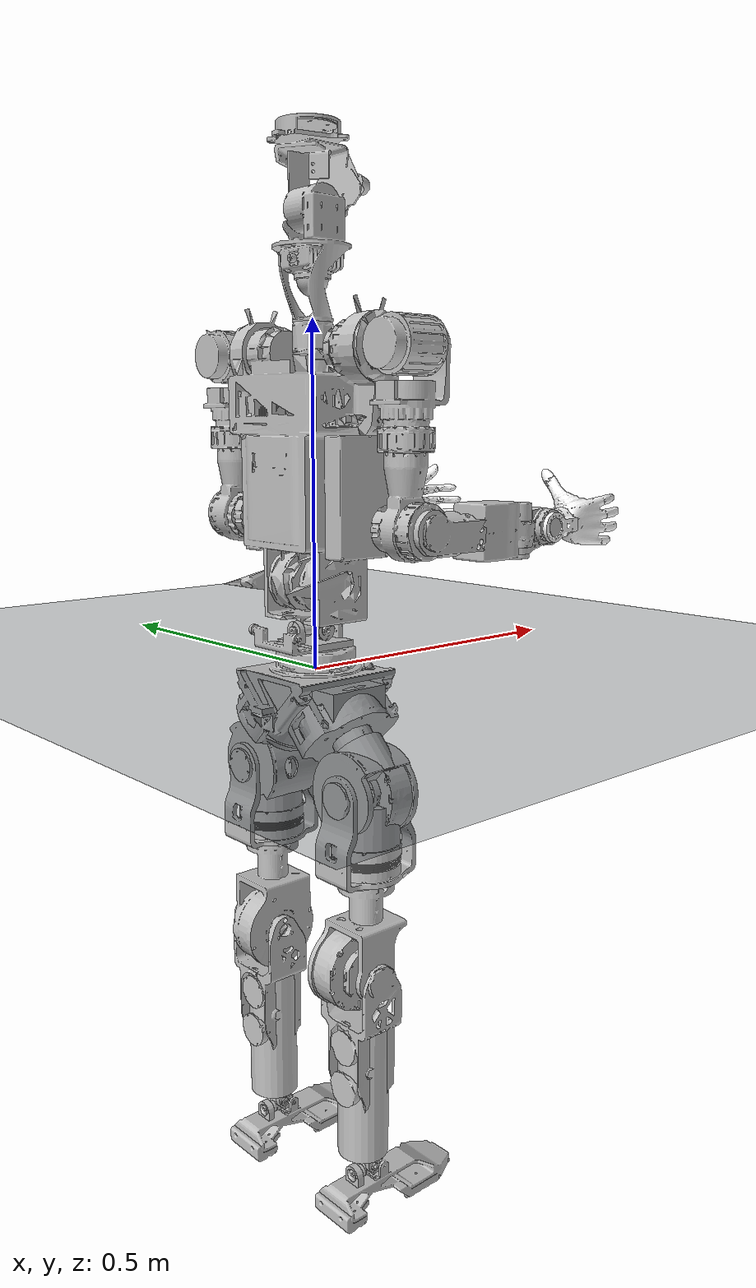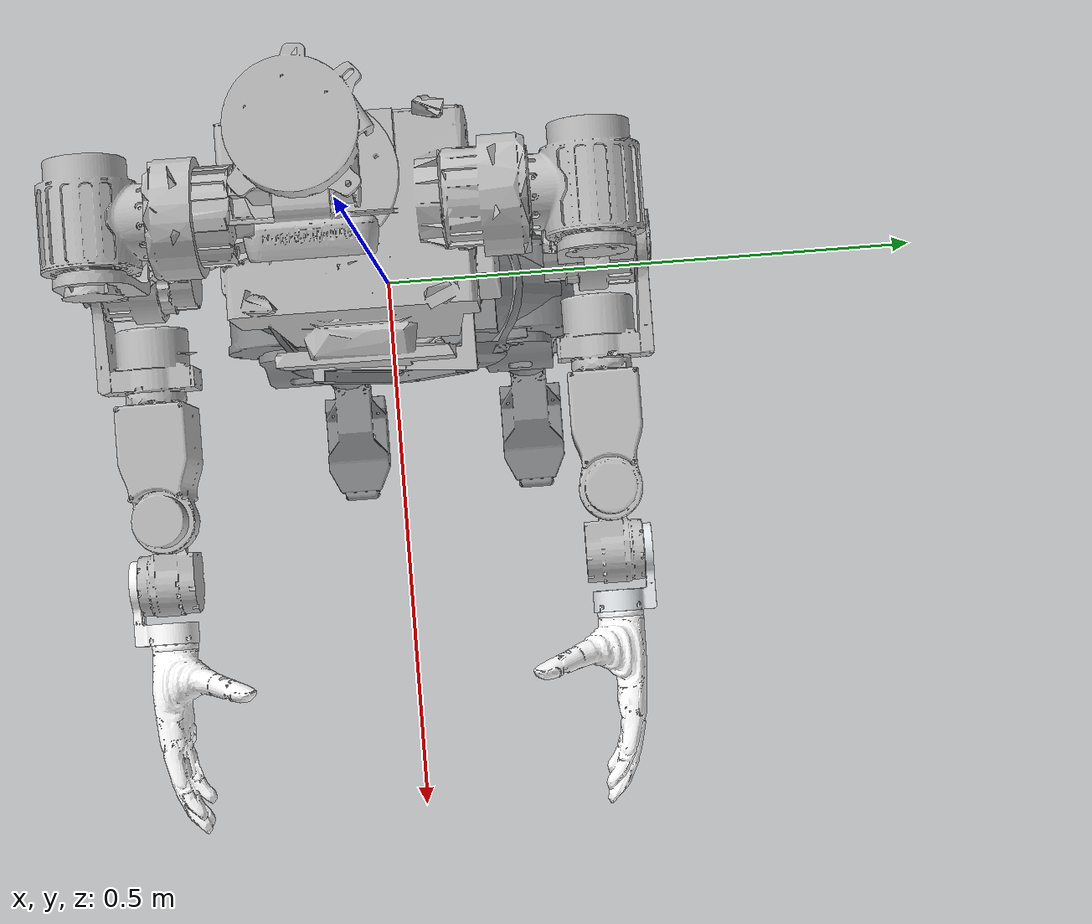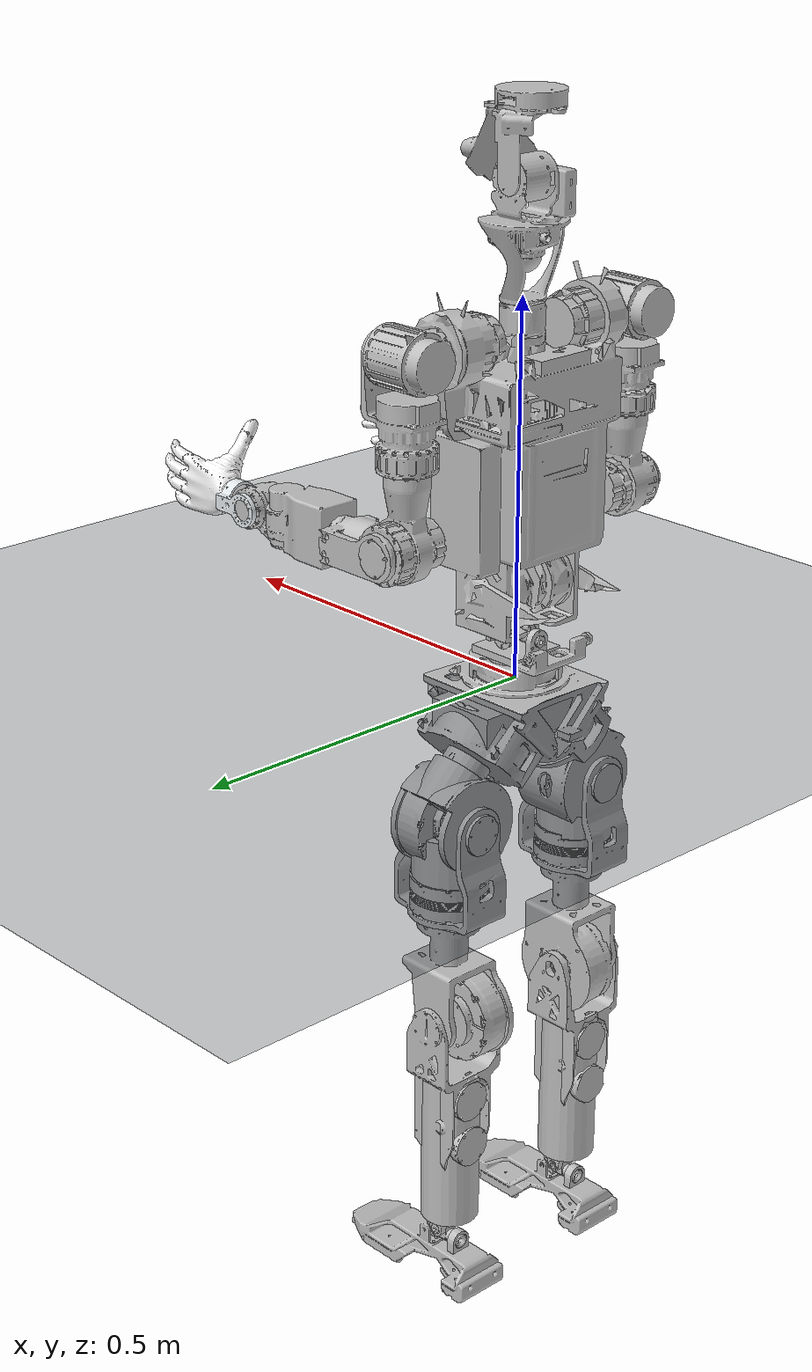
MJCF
<mujoco model="v1.1_u3.0_0303_v0_29dof scene">
  <include file="v1.1_u3.0_0303_v0_29dof_floating.xml"/>

  <statistic center="0.0 0.0 0.9" extent="1.5"/>

  <visual>
    <headlight diffuse="0.7 0.7 0.7" ambient="0.2 0.2 0.2" specular="0.2 0.2 0.2"/>
    <rgba haze="0.15 0.2 0.25 1"/>
    <global azimuth="-150" elevation="-20"/>
  </visual>

  <asset>
    <texture
      name="grid"
      type="2d"
      builtin="checker"
      rgb1="0.18 0.22 0.25"
      rgb2="0.10 0.12 0.14"
      width="512"
      height="512"
      mark="edge"
      markrgb="0.8 0.8 0.8"
    />
    <material
      name="grid"
      texture="grid"
      texuniform="true"
      texrepeat="8 8"
      reflectance="0.15"
    />
  </asset>

  <worldbody>
    <light pos="1.5 0 3.5" dir="0 0 -1" directional="true"/>
    <light pos="-1.0 1.0 2.5" dir="0 0 -1" directional="true"/>
    <geom name="floor" type="plane" size="0 0 0.05" material="grid"/>
  </worldbody>
</mujoco>

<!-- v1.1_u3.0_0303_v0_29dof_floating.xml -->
<mujoco model="v1.1_u3.0_0303_v0_29dof">
  <compiler angle="radian" meshdir="meshes/"/>

  <asset>
    <mesh name="base_link" file="base_link.STL"/>
    <mesh name="left_hip_pitch_link" file="left_hip_pitch_link.STL"/>
    <mesh name="left_hip_roll_link" file="left_hip_roll_link.STL"/>
    <mesh name="left_hip_yaw_link" file="left_hip_yaw_link.STL"/>
    <mesh name="left_knee_link" file="left_knee_link.STL"/>
    <mesh name="left_ankle_pitch_link" file="left_ankle_pitch_link.STL"/>
    <mesh name="left_ankle_roll_link" file="left_ankle_roll_link.STL"/>
    <mesh name="right_hip_pitch_link" file="right_hip_pitch_link.STL"/>
    <mesh name="right_hip_roll_link" file="right_hip_roll_link.STL"/>
    <mesh name="right_hip_yaw_link" file="right_hip_yaw_link.STL"/>
    <mesh name="right_knee_link" file="right_knee_link.STL"/>
    <mesh name="right_ankle_pitch_link" file="right_ankle_pitch_link.STL"/>
    <mesh name="right_ankle_roll_link" file="right_ankle_roll_link.STL"/>
    <mesh name="waist_yaw_link" file="waist_yaw_link.STL"/>
    <mesh name="waist_roll_link" file="waist_roll_link.STL"/>
    <mesh name="waist_pitch_link" file="waist_pitch_link.STL"/>
    <mesh name="head_yaw_link" file="head_yaw_link.STL"/>
    <mesh name="head_pitch_link" file="head_pitch_link.STL"/>
    <mesh name="left_shoulder_pitch_link" file="left_shoulder_pitch_link.STL"/>
    <mesh name="left_shoulder_roll_link" file="left_shoulder_roll_link.STL"/>
    <mesh name="left_shoulder_yaw_link" file="left_shoulder_yaw_link.STL"/>
    <mesh name="left_elbow_link" file="left_elbow_link.STL"/>
    <mesh name="left_wrist_roll_link" file="left_wrist_roll_link.STL"/>
    <mesh name="left_wrist_yaw_link" file="left_wrist_yaw_link.STL"/>
    <mesh name="left_wrist_pitch_link" file="left_wrist_pitch_link.STL"/>
    <mesh name="left_hand_link" file="left_hand_link.STL"/>
    <mesh name="right_shoulder_pitch_link" file="right_shoulder_pitch_link.STL"/>
    <mesh name="right_shoulder_roll_link" file="right_shoulder_roll_link.STL"/>
    <mesh name="right_shoulder_yaw_link" file="right_shoulder_yaw_link.STL"/>
    <mesh name="right_elbow_link" file="right_elbow_link.STL"/>
    <mesh name="right_wrist_roll_link" file="right_wrist_roll_link.STL"/>
    <mesh name="right_wrist_yaw_link" file="right_wrist_yaw_link.STL"/>
    <mesh name="right_wrist_pitch_link" file="right_wrist_pitch_link.STL"/>
    <mesh name="right_hand_link" file="right_hand_link.STL"/>
  </asset>
  <worldbody>
    <body name="base_link">
      <inertial pos="-0.000112 5e-06 -0.049468" quat="0.498239 0.498283 -0.501755 0.501711" mass="5.717" diaginertia="0.0303601 0.0283439 0.019181"/>
      <joint name="floating_base_joint" type="free"/>
      <geom type="mesh" contype="0" conaffinity="0" group="1" density="0" rgba="0.75294 0.75294 0.75294 1" mesh="base_link"/>
      <geom size="0.05 0.1 0.025" pos="0 0 -0.04" type="box" rgba="0.75294 0.75294 0.75294 1"/>
      <site name="imu_in_pelvis" size="0.01" pos="0.04525 0 -0.04"/>
      <body name="left_hip_pitch_link" pos="0 0.11619 -0.12455" quat="0.923879 -0.382684 0 0">
        <inertial pos="0.003887 0.021532 -0.028237" quat="0.870396 0.486242 -0.0312337 -0.0707405" mass="2.3165" diaginertia="0.00535112 0.00457582 0.00400306" />
        <joint name="left_hip_pitch_joint" pos="0 0 0" axis="0 1 0" range="-2.618 2.618" actuatorfrcrange="-150 150" damping="0.1" frictionloss="0.5" />
        <geom type="mesh" contype="0" conaffinity="0" group="1" density="0" rgba="0.752941 0.752941 0.752941 1" mesh="left_hip_pitch_link" />
        <geom size="0.04 0.03" quat="0.707388 0.706825 0 0" type="cylinder" rgba="0.752941 0.752941 0.752941 1" />
        <body name="left_hip_roll_link" pos="-0.001 0.03 -0.03" quat="0.923879 0.382684 0 0">
          <inertial pos="0.001502 2.7e-05 -0.084234" quat="0.62727 0.326393 0.326393 0.62727" mass="1.48" diaginertia="0.004535 0.00337114 0.00296686" />
          <joint name="left_hip_roll_joint" pos="0 0 0" axis="1 0 0" range="-0.7854 2.3563" actuatorfrcrange="-150 150" damping="0.1" frictionloss="0.2" />
          <geom type="mesh" contype="0" conaffinity="0" group="1" density="0" rgba="0.752941 0.752941 0.752941 1" mesh="left_hip_roll_link" />
          <geom size="0.05 0.05" pos="0 0 -0.06" type="cylinder" rgba="0.752941 0.752941 0.752941 1" />
          <body name="left_hip_yaw_link" pos="0 0 -0.13">
            <inertial pos="-0.0107 -0.008795 -0.120268" quat="0.711829 0.00814217 0.0822562 0.697472" mass="2.325" diaginertia="0.00969146 0.00888604 0.00293651" />
            <joint name="left_hip_yaw_joint" pos="0 0 0" axis="0 0 1" range="-2.0944 2.0944" actuatorfrcrange="-90 90" damping="0.1" frictionloss="0.5" />
            <geom type="mesh" contype="0" conaffinity="0" group="1" density="0" rgba="0.752941 0.752941 0.752941 1" mesh="left_hip_yaw_link" />
            <geom type="mesh" rgba="0.752941 0.752941 0.752941 1" mesh="left_hip_yaw_link" />
            <body name="left_knee_link" pos="-0.015 0 -0.151">
              <inertial pos="0.004163 0.000262 -0.138565" quat="0.99994 -0.00282969 -0.0106115 1.22531e-05" mass="1.83395" diaginertia="0.0104298 0.00990025 0.00194592" />
              <joint name="left_knee_joint" pos="0 0 0" axis="0 1 0" range="-0.0873 2.0944" actuatorfrcrange="-150 150" damping="0.1" frictionloss="0.5" />
              <geom type="mesh" contype="0" conaffinity="0" group="1" density="0" rgba="0.752941 0.752941 0.752941 1" mesh="left_knee_link" />
              <geom size="0.04 0.115" pos="0.01 0 -0.2" type="cylinder" rgba="0.752941 0.752941 0.752941 1" />
              <body name="left_ankle_pitch_link" pos="0.015 0.0005 -0.339">
                <inertial pos="-0.002351 -0.000479 -0.006916" quat="0.344336 0.344336 -0.617602 0.617602" mass="0.102" diaginertia="2.22361e-05 1.77639e-05 1.7e-05" />
                <joint name="left_ankle_pitch_joint" pos="0 0 0" axis="0 1 0" range="-0.9599 0.2618" actuatorfrcrange="-54 54" damping="0.1" frictionloss="0.6" />
                <geom type="mesh" contype="0" conaffinity="0" group="1" density="0" rgba="0.752941 0.752941 0.752941 1" mesh="left_ankle_pitch_link" />
                <body name="left_ankle_roll_link" pos="0 0 -0.015">
                  <inertial pos="0.04469 -3.2e-05 -0.035309" quat="0.00358632 0.734652 0.00406875 0.678422" mass="0.968" diaginertia="0.00496359 0.00487899 0.000595419" />
                  <joint name="left_ankle_roll_joint" pos="0 0 0" axis="1 0 0" range="-0.1745 0.1745" actuatorfrcrange="-54 54" damping="0.1" frictionloss="0.4" />
                  <geom type="mesh" contype="0" conaffinity="0" group="1" density="0" rgba="0.752941 0.752941 0.752941 1" mesh="left_ankle_roll_link" />
                  <geom size="0.005" pos="-0.06 0.035 -0.06" rgba="0.752941 0.752941 0.752941 1" />
                  <geom size="0.005" pos="-0.06 -0.035 -0.06" rgba="0.752941 0.752941 0.752941 1" />
                  <geom size="0.005" pos="0.13 0.035 -0.06" rgba="0.752941 0.752941 0.752941 1" />
                  <geom size="0.005" pos="0.13 -0.035 -0.06" rgba="0.752941 0.752941 0.752941 1" />
                  <geom size="0.005" pos="0.17 0.018 -0.058" rgba="0.752941 0.752941 0.752941 1" />
                  <geom size="0.005" pos="0.17 -0.018 -0.058" rgba="0.752941 0.752941 0.752941 1" />
                  <geom size="0.005" pos="-0.035 0.035 -0.06" rgba="0.752941 0.752941 0.752941 1" />
                  <geom size="0.005" pos="-0.035 -0.035 -0.06" rgba="0.752941 0.752941 0.752941 1" />
                  <geom size="0.005" pos="0.06 0.035 -0.06" rgba="0.752941 0.752941 0.752941 1" />
                  <geom size="0.005" pos="0.06 -0.035 -0.06" rgba="0.752941 0.752941 0.752941 1" />
                </body>
              </body>
            </body>
          </body>
        </body>
      </body>
      <body name="right_hip_pitch_link" pos="0 -0.11619 -0.12455" quat="0.923879 0.382684 0 0">
        <inertial pos="0.003743 -0.021585 -0.028165" quat="0.492661 0.86647 0.0748149 0.030305" mass="2.3165" diaginertia="0.00534645 0.00456441 0.00398714" />
        <joint name="right_hip_pitch_joint" pos="0 0 0" axis="0 1 0" range="-2.618 2.618" actuatorfrcrange="-150 150" damping="0.1" frictionloss="0.5" />
        <geom type="mesh" contype="0" conaffinity="0" group="1" density="0" rgba="0.752941 0.752941 0.752941 1" mesh="right_hip_pitch_link" />
        <geom size="0.04 0.03" quat="0.707388 0.706825 0 0" type="cylinder" rgba="0.752941 0.752941 0.752941 1" />
        <body name="right_hip_roll_link" pos="-0.001 -0.03 -0.03" quat="0.923879 -0.382684 0 0">
          <inertial pos="0.00151 -4e-06 -0.084234" quat="0.621895 0.329792 0.332425 0.627676" mass="1.48" diaginertia="0.00454812 0.00336692 0.00295797" />
          <joint name="right_hip_roll_joint" pos="0 0 0" axis="1 0 0" range="-2.3563 0.7854" actuatorfrcrange="-150 150" damping="0.1" frictionloss="0.2" />
          <geom type="mesh" contype="0" conaffinity="0" group="1" density="0" rgba="0.752941 0.752941 0.752941 1" mesh="right_hip_roll_link" />
          <geom size="0.05 0.05" pos="0 0 -0.06" type="cylinder" rgba="0.752941 0.752941 0.752941 1" />
          <body name="right_hip_yaw_link" pos="0 0 -0.13">
            <inertial pos="-0.010686 0.008793 -0.120271" quat="0.697469 0.0822969 0.00816139 0.711827" mass="2.325" diaginertia="0.00969148 0.0088841 0.00293842" />
            <joint name="right_hip_yaw_joint" pos="0 0 0" axis="0 0 1" range="-2.0944 2.0944" actuatorfrcrange="-90 90" damping="0.1" frictionloss="0.5" />
            <geom type="mesh" contype="0" conaffinity="0" group="1" density="0" rgba="0.752941 0.752941 0.752941 1" mesh="right_hip_yaw_link" />
            <geom type="mesh" rgba="0.752941 0.752941 0.752941 1" mesh="right_hip_yaw_link" />
            <body name="right_knee_link" pos="-0.015 0 -0.151">
              <inertial pos="0.003946 -0.000275 -0.140064" quat="0.999935 0.00244224 -0.0111059 -0.00102127" mass="1.83395" diaginertia="0.0109054 0.0103862 0.00194538" />
              <joint name="right_knee_joint" pos="0 0 0" axis="0 1 0" range="-0.0873 2.0944" actuatorfrcrange="-150 150" damping="0.1" frictionloss="0.5" />
              <geom type="mesh" contype="0" conaffinity="0" group="1" density="0" rgba="0.752941 0.752941 0.752941 1" mesh="right_knee_link" />
              <geom size="0.04 0.115" pos="0.01 0 -0.2" type="cylinder" rgba="0.752941 0.752941 0.752941 1" />
              <body name="right_ankle_pitch_link" pos="0.015 -0.0005 -0.339">
                <inertial pos="-0.00281 0.000572 -0.008265" quat="0.601501 0.371748 0.371748 0.601501" mass="0.102" diaginertia="1.9e-05 1.9e-05 1.4e-05" />
                <joint name="right_ankle_pitch_joint" pos="0 0 0" axis="0 1 0" range="-0.9599 0.2618" actuatorfrcrange="-54 54" damping="0.1" frictionloss="0.6" />
                <geom type="mesh" contype="0" conaffinity="0" group="1" density="0" rgba="0.752941 0.752941 0.752941 1" mesh="right_ankle_pitch_link" />
                <body name="right_ankle_roll_link" pos="0 0 -0.015">
                  <inertial pos="0.044949 3.2e-05 -0.03559" quat="-0.00325733 0.733901 -0.00370301 0.679238" mass="0.968" diaginertia="0.00499328 0.00489999 0.000591734" />
                  <joint name="right_ankle_roll_joint" pos="0 0 0" axis="1 0 0" range="-0.1745 0.1745" actuatorfrcrange="-54 54" damping="0.1" frictionloss="0.4" />
                  <geom type="mesh" contype="0" conaffinity="0" group="1" density="0" rgba="0.752941 0.752941 0.752941 1" mesh="right_ankle_roll_link" />
                  <geom size="0.005" pos="-0.06 0.035 -0.06" rgba="0.752941 0.752941 0.752941 1" />
                  <geom size="0.005" pos="-0.06 -0.035 -0.06" rgba="0.752941 0.752941 0.752941 1" />
                  <geom size="0.005" pos="0.13 0.035 -0.06" rgba="0.752941 0.752941 0.752941 1" />
                  <geom size="0.005" pos="0.13 -0.035 -0.06" rgba="0.752941 0.752941 0.752941 1" />
                  <geom size="0.005" pos="0.17 0.018 -0.058" rgba="0.752941 0.752941 0.752941 1" />
                  <geom size="0.005" pos="0.17 -0.018 -0.058" rgba="0.752941 0.752941 0.752941 1" />
                  <geom size="0.005" pos="-0.035 0.035 -0.06" rgba="0.752941 0.752941 0.752941 1" />
                  <geom size="0.005" pos="-0.035 -0.035 -0.06" rgba="0.752941 0.752941 0.752941 1" />
                  <geom size="0.005" pos="0.06 0.035 -0.06" rgba="0.752941 0.752941 0.752941 1" />
                  <geom size="0.005" pos="0.06 -0.035 -0.06" rgba="0.752941 0.752941 0.752941 1" />
                </body>
              </body>
            </body>
          </body>
        </body>
      </body>
      <body name="waist_yaw_link">
        <inertial pos="-0.025004 1e-06 0.041503" quat="0 0.73528 0 0.677763" mass="0.287" diaginertia="0.000603691 0.000469 0.000196309"/>
        <joint name="waist_yaw_joint" pos="0 0 0" axis="0 0 1" range="-1.5708 1.5708" actuatorfrcrange="-90 90"/>
        <geom type="mesh" contype="0" conaffinity="0" group="1" density="0" rgba="0.752941 0.752941 0.752941 1" mesh="waist_yaw_link"/>
        <geom size="0.04 0.04 0.005" pos="0 0 0.04" type="box" rgba="0.752941 0.752941 0.752941 1"/>
        <body name="waist_roll_link" pos="0 0 0.0615">
          <inertial pos="0 0 -1.7e-05" quat="0 0.707107 0 0.707107" mass="0.185" diaginertia="7.5e-05 5.5e-05 2.6e-05" />
          <joint name="waist_roll_joint" pos="0 0 0" axis="1 0 0" range="-0.1745 0.1745" actuatorfrcrange="-90 90" />
          <geom type="mesh" contype="0" conaffinity="0" group="1" density="0" rgba="0.752941 0.752941 0.752941 1" mesh="waist_roll_link" />
          <geom type="mesh" rgba="0.752941 0.752941 0.752941 1" mesh="waist_roll_link" />
          <body name="torso_link">
            <inertial pos="0.00551532 0.00198549 0.260377" quat="0.553681 0.0738187 0.071398 0.826372" mass="12.4908" diaginertia="0.305693 0.285501 0.134311"/>
            <joint name="waist_pitch_joint" pos="0 0 0" axis="0 1 0" range="-0.3491 0.6981" actuatorfrcrange="-90 90"/>
            <geom type="mesh" contype="0" conaffinity="0" group="1" density="0" rgba="0.752941 0.752941 0.752941 1" mesh="waist_pitch_link"/>
            <geom type="mesh" rgba="0.752941 0.752941 0.752941 1" mesh="waist_pitch_link"/>
            <geom pos="0 0 0.4375" type="mesh" contype="0" conaffinity="0" group="1" density="0" rgba="0.752941 0.752941 0.752941 1" mesh="head_yaw_link"/>
            <geom pos="0 0 0.4375" type="mesh" rgba="0.752941 0.752941 0.752941 1" mesh="head_yaw_link"/>
            <geom pos="0 0 0.5795" type="mesh" contype="0" conaffinity="0" group="1" density="0" rgba="0.752941 0.752941 0.752941 1" mesh="head_pitch_link"/>
            <geom pos="0 0 0.5795" type="mesh" rgba="0.752941 0.752941 0.752941 1" mesh="head_pitch_link"/>
            <body name="left_shoulder_pitch_link" pos="0 0.1446 0.3935">
              <inertial pos="0.005662 0.045222 -4e-06" quat="0.601501 0.371748 -0.601501 0.371748" mass="0.82" diaginertia="0.000604 0.000578 0.000573" />
              <joint name="left_shoulder_pitch_joint" pos="0 0 0" axis="0 1 0" range="-2.618 2.618" actuatorfrcrange="-80 80" />
              <geom type="mesh" contype="0" conaffinity="0" group="1" density="0" rgba="0.752941 0.752941 0.752941 1" mesh="left_shoulder_pitch_link" />
              <geom type="mesh" rgba="0.752941 0.752941 0.752941 1" mesh="left_shoulder_pitch_link" />
              <body name="left_shoulder_roll_link" pos="0 0.047 0">
                <inertial pos="0.004162 6e-05 -0.097299" quat="0.75133 0.146369 0.177273 0.618591" mass="0.888" diaginertia="0.00142218 0.00141743 0.0007054" />
                <joint name="left_shoulder_roll_joint" pos="0 0 0" axis="1 0 0" range="-0.0873 3.2289" actuatorfrcrange="-80 80" />
                <geom type="mesh" contype="0" conaffinity="0" group="1" density="0" rgba="0.752941 0.752941 0.752941 1" mesh="left_shoulder_roll_link" />
                <geom type="mesh" rgba="0.752941 0.752941 0.752941 1" mesh="left_shoulder_roll_link" />
                <body name="left_shoulder_yaw_link" pos="-0.00072034 0 -0.1346">
                  <inertial pos="0.006267 0.007667 -0.091718" quat="0.696205 0.00191488 -0.0812741 0.713225" mass="0.98" diaginertia="0.00140403 0.00136937 0.000762599" />
                  <joint name="left_shoulder_yaw_joint" pos="0 0 0" axis="0 0 1" range="-2.618 2.618" actuatorfrcrange="-80 80" />
                  <geom type="mesh" contype="0" conaffinity="0" group="1" density="0" rgba="0.752941 0.752941 0.752941 1" mesh="left_shoulder_yaw_link" />
                  <geom type="mesh" rgba="0.752941 0.752941 0.752941 1" mesh="left_shoulder_yaw_link" />
                  <body name="left_elbow_link" pos="0.0075 0 -0.1019">
                    <inertial pos="0.081388 0.010684 -0.008487" quat="0.204129 0.704737 -0.163861 0.659413" mass="0.516" diaginertia="0.000713308 0.00066173 0.000240962" />
                    <joint name="left_elbow_joint" pos="0 0 0" axis="0 1 0" range="-0.6981 3.3161" actuatorfrcrange="-80 80" />
                    <geom type="mesh" contype="0" conaffinity="0" group="1" density="0" rgba="0.752941 0.752941 0.752941 1" mesh="left_elbow_link" />
                    <geom type="mesh" rgba="0.752941 0.752941 0.752941 1" mesh="left_elbow_link" />
                    <body name="left_wrist_roll_link" pos="0.1 0.0019 -0.009">
                      <inertial pos="0.08529 -4.2e-05 -0.005123" quat="0.460214 0.536845 0.536845 0.460214" mass="0.67" diaginertia="0.00113 0.00105584 0.000420156" />
                      <joint name="left_wrist_roll_joint" pos="0 0 0" axis="1 0 0" range="-2.618 2.618" actuatorfrcrange="-11.5 11.5" />
                      <geom type="mesh" contype="0" conaffinity="0" group="1" density="0" rgba="0.752941 0.752941 0.752941 1" mesh="left_wrist_roll_link" />
                      <geom type="mesh" rgba="0.752941 0.752941 0.752941 1" mesh="left_wrist_roll_link" />
                      <body name="left_wrist_yaw_link" pos="0.1135 0 0">
                        <inertial pos="0.051473 0.006559 -0.001913" quat="0.598709 0.294471 0.367661 0.647811" mass="0.365" diaginertia="0.0001769 0.000172925 0.000118175" />
                        <joint name="left_wrist_yaw_joint" pos="0 0 0" axis="0 0 1" range="-1.6581 1.5708" actuatorfrcrange="-11.5 11.5" />
                        <geom type="mesh" contype="0" conaffinity="0" group="1" density="0" rgba="0.752941 0.752941 0.752941 1" mesh="left_wrist_yaw_link" />
                        <geom type="mesh" rgba="0.752941 0.752941 0.752941 1" mesh="left_wrist_yaw_link" />
                        <body name="left_wrist_pitch_link" pos="0.054 0 0">
                          <inertial pos="0.0729301 0.0327958 -0.016654" quat="0.662577 0.325952 0.57668 0.349553" mass="0.549" diaginertia="0.00164468 0.00128704 0.000612416"/>
                          <joint name="left_wrist_pitch_joint" pos="0 0 0" axis="0 1 0" range="-1.6581 1.4835" actuatorfrcrange="-11.5 11.5"/>
                          <geom type="mesh" contype="0" conaffinity="0" group="1" density="0" rgba="0.898039 0.917647 0.929412 1" mesh="left_wrist_pitch_link"/>
                          <geom type="mesh" rgba="0.898039 0.917647 0.929412 1" mesh="left_wrist_pitch_link"/>
                          <geom pos="0.052 0 0.001" quat="1 0 0 0" type="mesh" contype="0" conaffinity="0" group="1" density="0" rgba="1 1 1 1" mesh="left_hand_link"/>
                          <geom pos="0.052 0 0.001" quat="1 0 0 0" type="mesh" rgba="1 1 1 1" mesh="left_hand_link"/>
                        </body>
                      </body>
                    </body>
                  </body>
                </body>
              </body>
            </body>
            <body name="right_shoulder_pitch_link" pos="0 -0.1446 0.3935">
              <inertial pos="0.005482 -0.045219 -3e-06" quat="0.450248 0.545231 -0.450248 0.545231" mass="0.82" diaginertia="0.000599 0.000579385 0.000568615" />
              <joint name="right_shoulder_pitch_joint" pos="0 0 0" axis="0 1 0" range="-2.618 2.618" actuatorfrcrange="-80 80" />
              <geom type="mesh" contype="0" conaffinity="0" group="1" density="0" rgba="0.752941 0.752941 0.752941 1" mesh="right_shoulder_pitch_link" />
              <geom type="mesh" rgba="0.752941 0.752941 0.752941 1" mesh="right_shoulder_pitch_link" />
              <body name="right_shoulder_roll_link" pos="0 -0.047 0">
                <inertial pos="0.004272 -6.8e-05 -0.097053" quat="0.688475 0.161253 0.161253 0.688475" mass="0.888" diaginertia="0.001449 0.00144621 0.000704791" />
                <joint name="right_shoulder_roll_joint" pos="0 0 0" axis="1 0 0" range="-3.2289 0.0873" actuatorfrcrange="-80 80" />
                <geom type="mesh" contype="0" conaffinity="0" group="1" density="0" rgba="0.752941 0.752941 0.752941 1" mesh="right_shoulder_roll_link" />
                <geom type="mesh" rgba="0.752941 0.752941 0.752941 1" mesh="right_shoulder_roll_link" />
                <body name="right_shoulder_yaw_link" pos="-0.00072034 0 -0.1346">
                  <inertial pos="0.006264 -0.007667 -0.091716" quat="0.713085 -0.0814017 0.00192978 0.696333" mass="0.98" diaginertia="0.00140405 0.00136938 0.000763573" />
                  <joint name="right_shoulder_yaw_joint" pos="0 0 0" axis="0 0 1" range="-2.618 2.618" actuatorfrcrange="-80 80" />
                  <geom type="mesh" contype="0" conaffinity="0" group="1" density="0" rgba="0.752941 0.752941 0.752941 1" mesh="right_shoulder_yaw_link" />
                  <geom type="mesh" rgba="0.752941 0.752941 0.752941 1" mesh="right_shoulder_yaw_link" />
                  <body name="right_elbow_link" pos="0.0075 0 -0.1019">
                    <inertial pos="0.080847 -0.010963 -0.008432" quat="-0.205718 0.707303 0.15868 0.657436" mass="0.516" diaginertia="0.000738638 0.000687294 0.000241068" />
                    <joint name="right_elbow_joint" pos="0 0 0" axis="0 1 0" range="-0.6981 3.3161" actuatorfrcrange="-80 80" />
                    <geom type="mesh" contype="0" conaffinity="0" group="1" density="0" rgba="0.752941 0.752941 0.752941 1" mesh="right_elbow_link" />
                    <geom type="mesh" rgba="0.752941 0.752941 0.752941 1" mesh="right_elbow_link" />
                    <body name="right_wrist_roll_link" pos="0.1 -0.0019 -0.009">
                      <inertial pos="0.0852865 4.55e-05 -0.005134" quat="0.459784 0.536424 0.538176 0.459581" mass="0.679415" diaginertia="0.001131 0.0010562 0.000421803" />
                      <joint name="right_wrist_roll_joint" pos="0 0 0" axis="1 0 0" range="-2.618 2.618" actuatorfrcrange="-11.5 11.5" />
                      <geom type="mesh" contype="0" conaffinity="0" group="1" density="0" rgba="0.752941 0.752941 0.752941 1" mesh="right_wrist_roll_link" />
                      <geom type="mesh" rgba="0.752941 0.752941 0.752941 1" mesh="right_wrist_roll_link" />
                      <body name="right_wrist_yaw_link" pos="0.1135 0 0">
                        <inertial pos="0.051473 -0.006559 -0.001913" quat="0.647811 0.367661 0.294471 0.598709" mass="0.365" diaginertia="0.0001769 0.000172925 0.000118175" />
                        <joint name="right_wrist_yaw_joint" pos="0 0 0" axis="0 0 1" range="-1.5708 1.6581" actuatorfrcrange="-11.5 11.5" />
                        <geom type="mesh" contype="0" conaffinity="0" group="1" density="0" rgba="0.752941 0.752941 0.752941 1" mesh="right_wrist_yaw_link" />
                        <geom type="mesh" rgba="0.752941 0.752941 0.752941 1" mesh="right_wrist_yaw_link" />
                        <body name="right_wrist_pitch_link" pos="0.054 0 0">
                          <inertial pos="0.0582822 0.0446657 0.03597" quat="0.263421 0.535485 0.318658 0.736426" mass="0.549" diaginertia="0.00165741 0.00144667 0.000763368"/>
                          <joint name="right_wrist_pitch_joint" pos="0 0 0" axis="0 1 0" range="-1.6581 1.4835" actuatorfrcrange="-11.5 11.5"/>
                          <geom type="mesh" contype="0" conaffinity="0" group="1" density="0" rgba="1 1 1 1" mesh="right_wrist_pitch_link"/>
                          <geom type="mesh" rgba="1 1 1 1" mesh="right_wrist_pitch_link"/>
                          <geom pos="0.052 0.001 0" quat="1 0 0 0" type="mesh" contype="0" conaffinity="0" group="1" density="0" rgba="1 1 1 1" mesh="right_hand_link"/>
                          <geom pos="0.052 0.001 0" quat="1 0 0 0" type="mesh" rgba="1 1 1 1" mesh="right_hand_link"/>
                        </body>
                      </body>
                    </body>
                  </body>
                </body>
              </body>
            </body>
          </body>
        </body>
      </body>
    </body>
  </worldbody>
  <sensor>
    <gyro name="imu_ang_vel" site="imu_in_pelvis"/>
    <velocimeter name="imu_lin_vel" site="imu_in_pelvis"/>
    <accelerometer name="imu_lin_acc" site="imu_in_pelvis"/>
    <subtreeangmom name="root_angmom" body="base_link"/>
  </sensor>
</mujoco>
